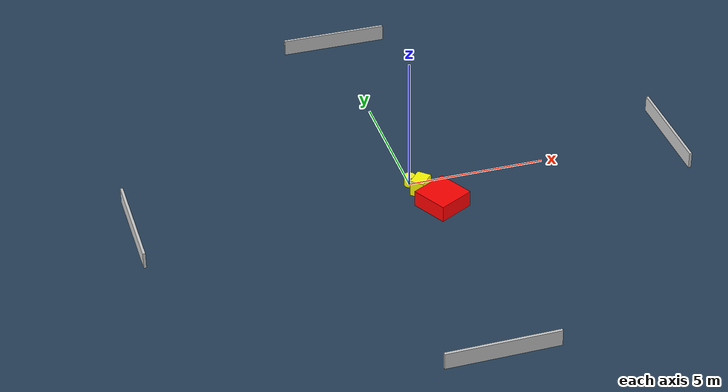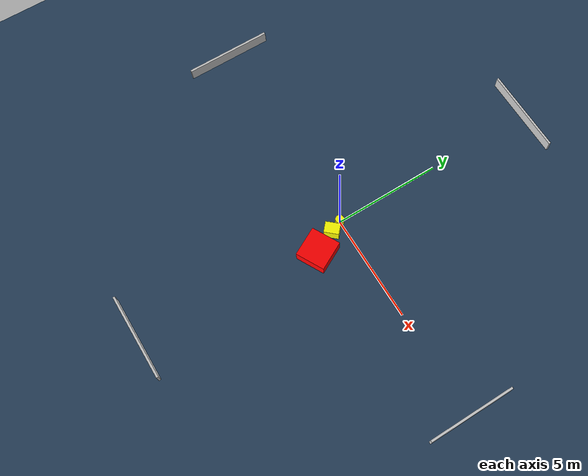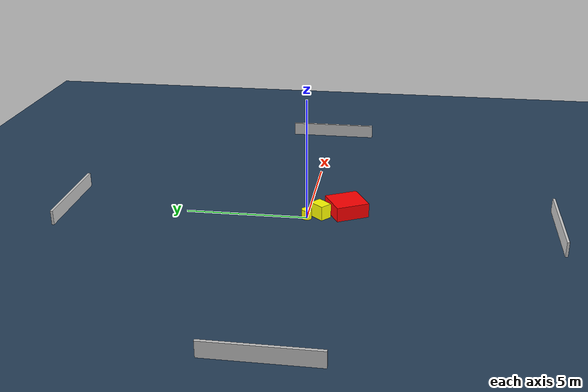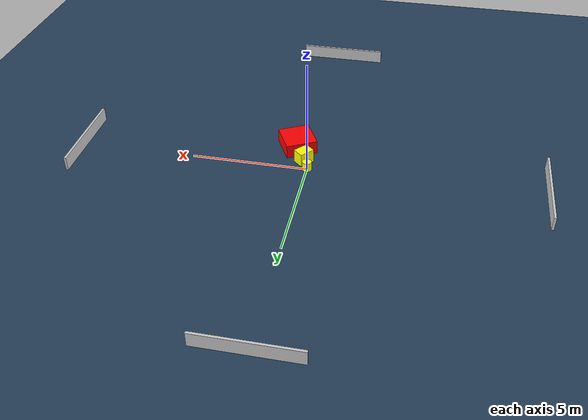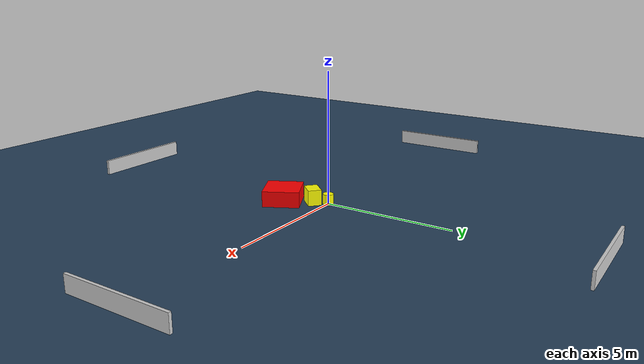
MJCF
<?xml version="1.0" ?>
<mujoco model="generated_environment">
  <option timestep="0.01" integrator="RK4" cone="elliptic"/>
  <default>
    <geom density="1"/>
  </default>
  <asset>
    <texture builtin="gradient" height="3072" name="skybox" rgb1="0.3 0.5 0.7" rgb2="0 0 0" type="skybox" width="512"/>
    <texture builtin="checker" height="300" name="groundplane" rgb1="0.2 0.3 0.4" rgb2="0.1 0.2 0.3" type="2d" width="300"/>
    <material name="groundplane" reflectance="0.2" texrepeat="5 5" texture="groundplane"/>
  </asset>
  <worldbody>
    <light dir="0 0 -1" directional="true" pos="0 0 1.5"/>
    <geom condim="3" friction="0.5 0.005 0.001" material="groundplane" name="floor" pos="0 0 0" size="0 0 0.05" type="plane"/>
    <body name="walls">
      <geom name="wall_1" condim="4" pos="-10.0 0.0 0.3" rgba="0.800000011920929 0.800000011920929 0.800000011920929 1.0" size="0.05 2.0 0.3" type="box"/>
      <geom name="wall_2" condim="4" pos="10.0 0.0 0.3" rgba="0.800000011920929 0.800000011920929 0.800000011920929 1.0" size="0.05 2.0 0.3" type="box"/>
      <geom name="wall_3" condim="4" pos="0.0 -10.0 0.3" rgba="0.800000011920929 0.800000011920929 0.800000011920929 1.0" size="2.0 0.05 0.3" type="box"/>
      <geom name="wall_4" condim="4" pos="0.0 10.0 0.3" rgba="0.800000011920929 0.800000011920929 0.800000011920929 1.0" size="2.0 0.05 0.3" type="box"/>
    </body>
    <body name="robot">
      <joint name="joint_x" type="slide" pos="0 0 0" axis="1 0 0"/>
      <joint name="joint_y" type="slide" pos="0 0 0" axis="0 1 0"/>
      <geom name="robot" type="cylinder" pos="0.0 0.0 0.2" size="0.2 0.2 0.0" mass="5.0" friction="1.0 0.005 0.0001" condim="4" rgba="1.0 1.0 0.0 1.0"/>
    </body>
    <body name="obstacle_1_movable">
      <geom name="obstacle_1_movable" condim="4" pos="0.2352471309443668 -0.5432607296153318 0.3" euler="0 0 228.26261849247683" friction="0.0 0.005 0.001" rgba="1.0 1.0 0.0 1.0" size="0.338109776414232 0.25433266300593366 0.3" type="box" mass="0.1"/>
      <joint type="free"/>
    </body>
    <body name="obstacle_2_static">
      <geom name="obstacle_2_static" condim="4" pos="0.7195722359623233 -1.5628556006611003 0.3" euler="0 0 117.74902383432453" friction="0.0 0.005 0.001" rgba="1.0 0.0 0.0 1.0" size="0.6943931423669165 0.6855800684475777 0.3" type="box"/>
    </body>
  </worldbody>
  <actuator>
    <motor name="actuator_x" joint="joint_x" gear="1" ctrlrange="-1 1"/>
    <motor name="actuator_y" joint="joint_y" gear="1" ctrlrange="-1 1"/>
  </actuator>
</mujoco>
